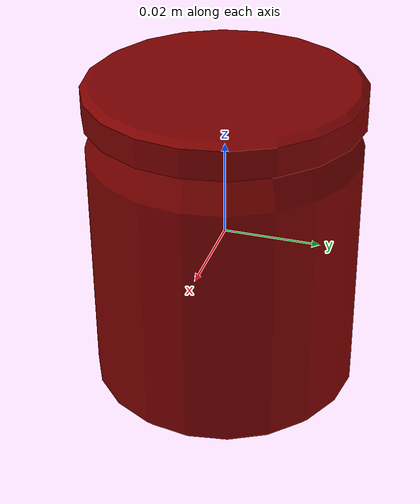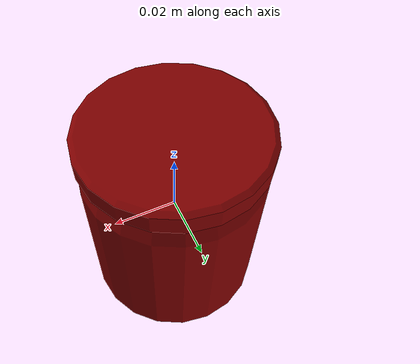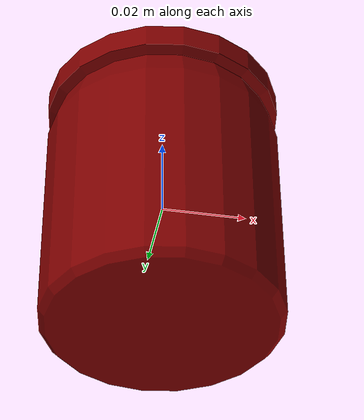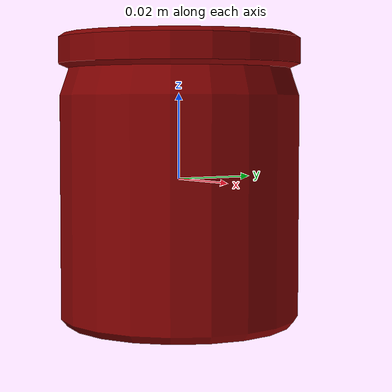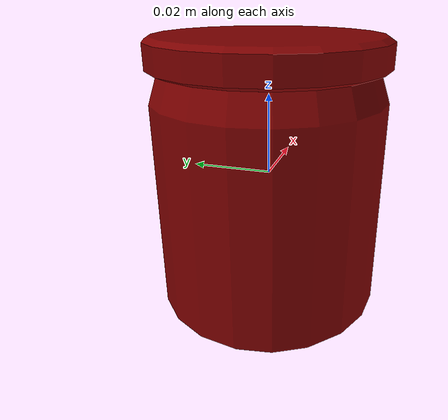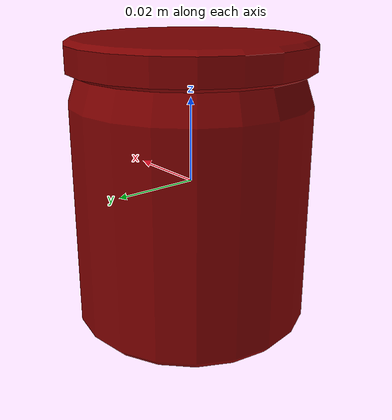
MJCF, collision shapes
<?xml version='1.0' encoding='utf-8'?>
<mujoco model="jam_4">
  <asset>
    <mesh file="visual/model_normalized_0.obj" name="model_normalized_0_vis" scale="0.06749999999999998 0.06749999999999998 0.06749999999999998" refquat="1.0 0.0 0.0 0.0" />
    <texture type="2d" name="image0" file="visual/image0.png" />
    <material name="lambert1.010" texture="image0" specular="0.5" shininess="0.25" />
    <mesh file="collision/collision_mesh_collision_0.obj" name="jam_collision_mesh_0" scale="0.06749999999999998 0.06749999999999998 0.06749999999999998" refquat="1.0 0.0 0.0 0.0" />
    <mesh file="collision/collision_mesh_collision_1.obj" name="jam_collision_mesh_1" scale="0.06749999999999998 0.06749999999999998 0.06749999999999998" refquat="1.0 0.0 0.0 0.0" />
  </asset>
  <default>
    <default class="region">
      <geom group="1" conaffinity="0" contype="0" rgba="0 1 0 0" mass="0" />
    </default>
    <default class="collision">
      <geom group="0" rgba="0.5 0 0 0.5" density="1571.660583246" />
    </default>
  </default>
  <worldbody>
    <body>
      <body name="object">
        <geom solimp="0.998 0.998 0.001" solref="0.001 1" density="157.166058325" friction="0.95 0.3 0.1" type="mesh" mesh="model_normalized_0_vis" conaffinity="0" contype="0" group="1" material="lambert1.010" />
        <geom class="region" name="reg_bbox" type="box" pos="0.0 0.0 -3.8812499999991963e-07" size="0.028240126199999993 0.028240172774999985 0.03374961187499999" />
        <geom mesh="jam_collision_mesh_0" type="mesh" class="collision" />
        <geom mesh="jam_collision_mesh_1" type="mesh" class="collision" />
      </body>
    </body>
  </worldbody>
</mujoco>
